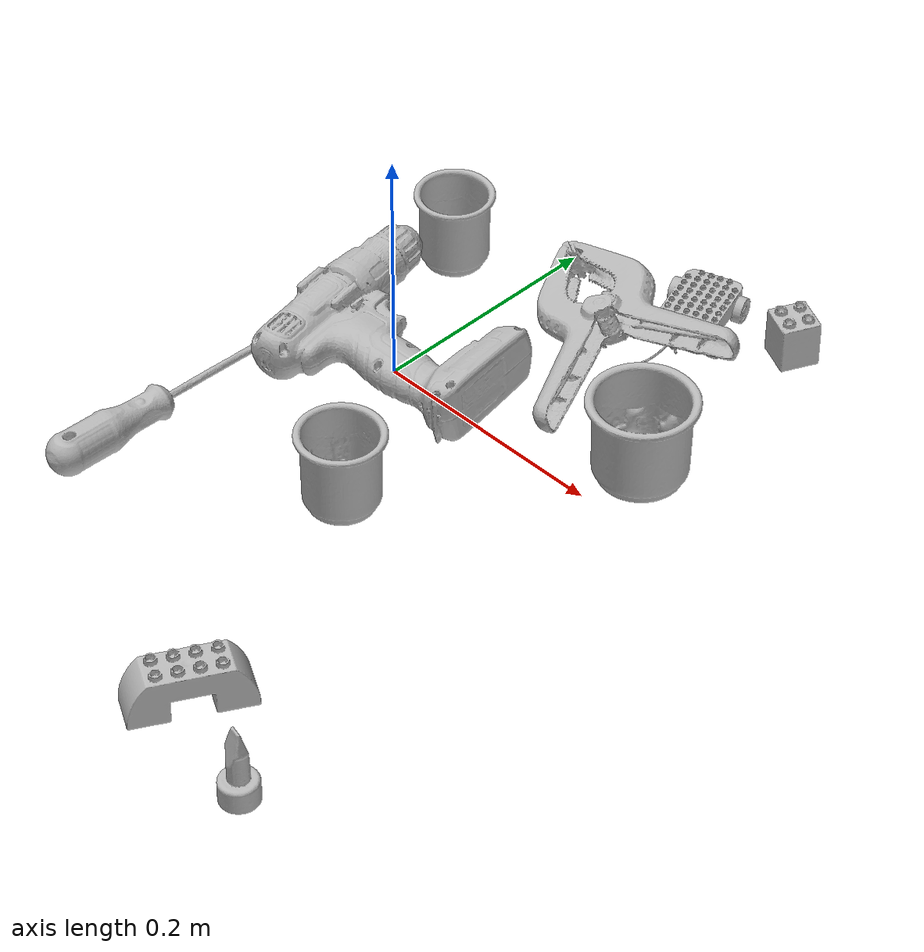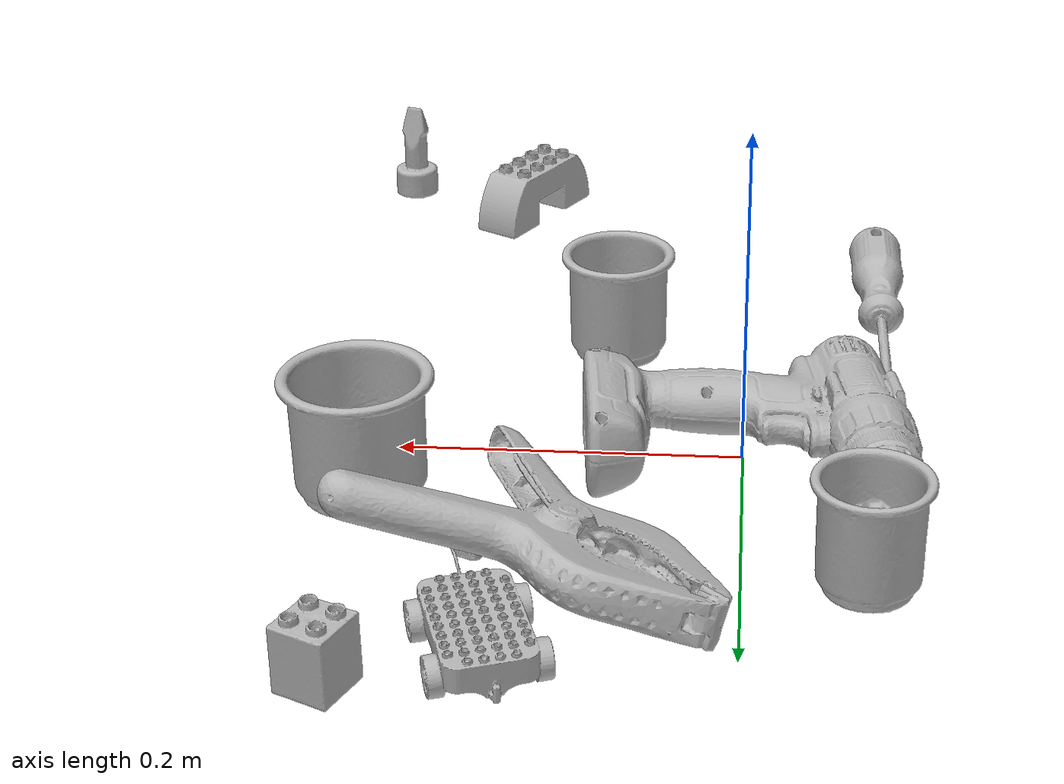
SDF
<sdf version="1.4">
  <world name="default">
    <light name="light1" type="point">
      <pose>0 0 1 0 0 0</pose>
      <diffuse>3 3 3 1</diffuse>
      <specular>3 3 3 1</specular>
    </light>
    <light name="light2" type="point">
      <pose>0 0.5 2 0 0 0</pose>
      <diffuse>1 1 1 1</diffuse>
      <specular>1 1 1 1</specular>
    </light>
    <light name="light3" type="point">
      <pose>0 0.5 2 0 0 0</pose>
      <diffuse>3 3 3 1</diffuse>
      <specular>3 3 3 1</specular>
    </light>
    <scene>
      <ambient>0.7 0.7 0.7</ambient>
    </scene>
    <model name="cup1">
      <link name="link_cup1">
        <collision name="default">
          <geometry>
            <mesh>
              <uri>model://d_cups/collision_meshes/collision.obj</uri>
              <scale>1.0 1.0 1.0</scale>
            </mesh>
          </geometry>
          <surface>
            <friction>
              <ode>
                <mu>0.5</mu>
                <mu2>0.5</mu2>
              </ode>
            </friction>
          <contact>
        <ode>
            <max_vel>0</max_vel>
            <min_depth>0.0001</min_depth>
            <kp>1e8</kp>
        </ode>
    </contact></surface>
        </collision>
        <visual name="default">
          <geometry>
            <mesh>
              <uri>model://d_cups/visual_meshes/visual.dae</uri>
              <scale>1.0 1.0 1.0</scale>
            </mesh>
          </geometry>
        </visual>
        <inertial>
          <mass>0.04943045228719711</mass>
          <pose>0.0008068052702583373 0.0019117395859211683 -0.0022666507866233587 0.2401104468273406 -0.24710716259907536 0.594298245500967</pose>
          <inertia>
            <ixx>4.1384912e-05</ixx>
            <iyy>4.1265153e-05</iyy>
            <izz>3.7460377e-05</izz>
            <ixy>0</ixy>
            <ixz>0</ixz>
            <iyz>0</iyz>
          </inertia>
        </inertial>
      </link>
      <pose>0.08026131242513657 -0.13097861409187317 0.03465903177857399 1.2792775015730879e-06 2.6580547877349596e-07 -2.87716157301704</pose>
    </model>
    <model name="cup2">
      <link name="link_cup2">
        <collision name="default">
          <geometry>
            <mesh>
              <uri>model://c_cups/collision_meshes/collision.obj</uri>
              <scale>1.0 1.0 1.0</scale>
            </mesh>
          </geometry>
          <surface>
            <friction>
              <ode>
                <mu>0.5</mu>
                <mu2>0.5</mu2>
              </ode>
            </friction>
          <contact>
        <ode>
            <max_vel>0</max_vel>
            <min_depth>0.0001</min_depth>
            <kp>1e8</kp>
        </ode>
    </contact></surface>
        </collision>
        <visual name="default">
          <geometry>
            <mesh>
              <uri>model://c_cups/visual_meshes/visual.dae</uri>
              <scale>1.0 1.0 1.0</scale>
            </mesh>
          </geometry>
        </visual>
        <inertial>
          <mass>0.02161477506160736</mass>
          <pose>0.0007237254758365452 0.002015391131862998 -0.0012750980677083135 0.3021577101392444 0.013461522825774588 -0.08771822086046323</pose>
          <inertia>
            <ixx>1.607462e-05</ixx>
            <iyy>1.5790554e-05</iyy>
            <izz>1.4215883e-05</izz>
            <ixy>0</ixy>
            <ixz>0</ixz>
            <iyz>0</iyz>
          </inertia>
        </inertial>
      </link>
      <pose>-0.06628797948360443 0.13074271380901337 0.03345901891589165 -5.767992472594407e-07 -3.1993111196110847e-07 -2.7823657308403673</pose>
    </model>
    <model name="cup3">
      <link name="link_cup3">
        <collision name="default">
          <geometry>
            <mesh>
              <uri>model://g_cups/collision_meshes/collision.obj</uri>
              <scale>1.0 1.0 1.0</scale>
            </mesh>
          </geometry>
          <surface>
            <friction>
              <ode>
                <mu>0.5</mu>
                <mu2>0.5</mu2>
              </ode>
            </friction>
          <contact>
        <ode>
            <max_vel>0</max_vel>
            <min_depth>0.0001</min_depth>
            <kp>1e8</kp>
        </ode>
    </contact></surface>
        </collision>
        <visual name="default">
          <geometry>
            <mesh>
              <uri>model://g_cups/visual_meshes/visual.dae</uri>
              <scale>1.0 1.0 1.0</scale>
            </mesh>
          </geometry>
        </visual>
        <inertial>
          <mass>0.04413851350545883</mass>
          <pose>-0.0007946275873109698 -4.206433004583232e-05 -0.002132937777787447 -0.2138199678327952 -0.31410615416341514 0.3111935262320568</pose>
          <inertia>
            <ixx>5.151955e-05</ixx>
            <iyy>5.1344283e-05</iyy>
            <izz>5.3365377e-05</izz>
            <ixy>0</ixy>
            <ixz>0</ixz>
            <iyz>0</iyz>
          </inertia>
        </inertial>
      </link>
      <pose>0.21324095129966736 0.049424804747104645 0.0372031107544899 -2.6612577257948275e-05 3.469949977055501e-05 -0.5415540893254596</pose>
    </model>
    <model name="toy1">
      <link name="link_toy1">
        <collision name="default">
          <geometry>
            <mesh>
              <uri>model://e_lego_duplo/collision_meshes/collision.obj</uri>
              <scale>1.0 1.0 1.0</scale>
            </mesh>
          </geometry>
          <surface>
            <friction>
              <ode>
                <mu>0.5</mu>
                <mu2>0.5</mu2>
              </ode>
            </friction>
          <contact>
        <ode>
            <max_vel>0</max_vel>
            <min_depth>0.0001</min_depth>
            <kp>1e8</kp>
        </ode>
    </contact></surface>
        </collision>
        <visual name="default">
          <geometry>
            <mesh>
              <uri>model://e_lego_duplo/visual_meshes/visual.dae</uri>
              <scale>1.0 1.0 1.0</scale>
            </mesh>
          </geometry>
        </visual>
        <inertial>
          <mass>0.08806774020195007</mass>
          <pose>0.0003256051568314433 0.00023485405836254358 0.0019521453650668263 -0.02256777049150226 -6.824370740412915e-05 -0.00762515400873393</pose>
          <inertia>
            <ixx>1.8365032e-05</ixx>
            <iyy>7.537481e-05</iyy>
            <izz>7.3399904e-05</izz>
            <ixy>0</ixy>
            <ixz>0</ixz>
            <iyz>0</iyz>
          </inertia>
        </inertial>
      </link>
      <pose>0.1559523195028305 -0.3481127917766571 0.021808966994285583 1.6836560717663876e-06 -9.06366041864082e-07 1.0659288016773925</pose>
    </model>
    <model name="toy2">
      <link name="link_toy2">
        <collision name="default">
          <geometry>
            <mesh>
              <uri>model://b_lego_duplo/collision_meshes/collision.obj</uri>
              <scale>1.0 1.0 1.0</scale>
            </mesh>
          </geometry>
          <surface>
            <friction>
              <ode>
                <mu>0.5</mu>
                <mu2>0.5</mu2>
              </ode>
            </friction>
          <contact>
        <ode>
            <max_vel>0</max_vel>
            <min_depth>0.0001</min_depth>
            <kp>1e8</kp>
        </ode>
    </contact></surface>
        </collision>
        <visual name="default">
          <geometry>
            <mesh>
              <uri>model://b_lego_duplo/visual_meshes/visual.dae</uri>
              <scale>1.0 1.0 1.0</scale>
            </mesh>
          </geometry>
        </visual>
        <inertial>
          <mass>0.04734363779425621</mass>
          <pose>-0.00011053025809815153 -9.15254986466607e-06 0.0019294298253953457 -0.03749543151759021 -0.02635344242756168 0.4519151706388912</pose>
          <inertia>
            <ixx>9.689229e-06</ixx>
            <iyy>9.754364e-06</iyy>
            <izz>8.632791e-06</izz>
            <ixy>0</ixy>
            <ixz>0</ixz>
            <iyz>0</iyz>
          </inertia>
        </inertial>
      </link>
      <pose>0.20250403881072998 0.23245155811309814 0.021815011277794838 3.149399881588681e-07 -7.960184279127713e-08 -0.432240368144395</pose>
    </model>
    <model name="toy3">
      <link name="link_toy3">
        <collision name="default">
          <geometry>
            <mesh>
              <uri>model://g_lego_duplo/collision_meshes/collision.obj</uri>
              <scale>0.5 0.5 0.5</scale>
            </mesh>
          </geometry>
          <surface>
            <friction>
              <ode>
                <mu>0.5</mu>
                <mu2>0.5</mu2>
              </ode>
            </friction>
          <contact>
        <ode>
            <max_vel>0</max_vel>
            <min_depth>0.0001</min_depth>
            <kp>1e8</kp>
        </ode>
    </contact></surface>
        </collision>
        <visual name="default">
          <geometry>
            <mesh>
              <uri>model://g_lego_duplo/visual_meshes/visual.dae</uri>
              <scale>0.5 0.5 0.5</scale>
            </mesh>
          </geometry>
        </visual>
        <inertial>
          <mass>0.0549229197204113</mass>
          <pose>-0.02502383477985859 0.0008777315961197019 0.0019403378246352077 0.010963030367844774 0.03810824354215502 -0.09653013034360637</pose>
          <inertia>
            <ixx>1.989599e-05</ixx>
            <iyy>6.0152015e-05</iyy>
            <izz>7.525238e-05</izz>
            <ixy>0</ixy>
            <ixz>0</ixz>
            <iyz>0</iyz>
          </inertia>
        </inertial>
      </link>
      <pose>0.13549992442131042 0.1753716915845871 0.014998338185250759 -0.0005621908134768578 -0.003533966273365691 -1.2480324938529255</pose>
    </model>
    <model name="toy4">
      <link name="link_toy4">
        <collision name="default">
          <geometry>
            <mesh>
              <uri>model://e_toy_airplane/collision_meshes/collision.obj</uri>
              <scale>1.0 1.0 1.0</scale>
            </mesh>
          </geometry>
          <surface>
            <friction>
              <ode>
                <mu>0.5</mu>
                <mu2>0.5</mu2>
              </ode>
            </friction>
          <contact>
        <ode>
            <max_vel>0</max_vel>
            <min_depth>0.0001</min_depth>
            <kp>1e8</kp>
        </ode>
    </contact></surface>
        </collision>
        <visual name="default">
          <geometry>
            <mesh>
              <uri>model://e_toy_airplane/visual_meshes/visual.dae</uri>
              <scale>1.0 1.0 1.0</scale>
            </mesh>
          </geometry>
        </visual>
        <inertial>
          <mass>0.02949252724647522</mass>
          <pose>0.0001174047210952267 -2.248294731543865e-05 -0.011187205091118813 0.00551852159670192 0.009228270522190251 0.15041692690710914</pose>
          <inertia>
            <ixx>9.0014555e-06</ixx>
            <iyy>8.909378e-06</iyy>
            <izz>2.7052915e-06</izz>
            <ixy>0</ixy>
            <ixz>0</ixz>
            <iyz>0</iyz>
          </inertia>
        </inertial>
      </link>
      <pose>0.2476658672094345 -0.3839813768863678 0.03321196883916855 4.953812174006467e-05 -0.00013005243864862694 -1.938374181628524</pose>
    </model>
    <model name="hardware1">
      <link name="link_hardware1">
        <collision name="default">
          <geometry>
            <mesh>
              <uri>model://power_drill/collision_meshes/collision.obj</uri>
              <scale>1.0 1.0 1.0</scale>
            </mesh>
          </geometry>
          <surface>
            <friction>
              <ode>
                <mu>0.5</mu>
                <mu2>0.5</mu2>
              </ode>
            </friction>
          <contact>
        <ode>
            <max_vel>0</max_vel>
            <min_depth>0.0001</min_depth>
            <kp>1e8</kp>
        </ode>
    </contact></surface>
        </collision>
        <visual name="default">
          <geometry>
            <mesh>
              <uri>model://power_drill/visual_meshes/visual.dae</uri>
              <scale>1.0 1.0 1.0</scale>
            </mesh>
          </geometry>
        </visual>
        <inertial>
          <mass>0.4622694253921509</mass>
          <pose>-0.014780544675886631 0.014369423501193523 0.0012414170196279883 0.0046091653592492164 0.00407302392026691 -0.1836269379856391</pose>
          <inertia>
            <ixx>0.0018837696</ixx>
            <iyy>0.00074116525</iyy>
            <izz>0.0024878501</izz>
            <ixy>0</ixy>
            <ixz>0</ixz>
            <iyz>0</iyz>
          </inertia>
        </inertial>
      </link>
      <pose>-0.0034988243132829666 0.01875028759241104 0.027312450110912323 -0.030306017626824774 -0.04725287356331235 1.7032078649321174</pose>
    </model>
    <model name="hardware2">
      <link name="link_hardware2">
        <collision name="default">
          <geometry>
            <mesh>
              <uri>model://flat_screwdriver/collision_meshes/collision.obj</uri>
              <scale>1.0 1.0 1.0</scale>
            </mesh>
          </geometry>
          <surface>
            <friction>
              <ode>
                <mu>0.5</mu>
                <mu2>0.5</mu2>
              </ode>
            </friction>
          <contact>
        <ode>
            <max_vel>0</max_vel>
            <min_depth>0.0001</min_depth>
            <kp>1e8</kp>
        </ode>
    </contact></surface>
        </collision>
        <visual name="default">
          <geometry>
            <mesh>
              <uri>model://flat_screwdriver/visual_meshes/visual.dae</uri>
              <scale>1.0 1.0 1.0</scale>
            </mesh>
          </geometry>
        </visual>
        <inertial>
          <mass>0.07028686255216599</mass>
          <pose>-0.0489187091588974 -0.0006576801533810794 -0.0006140916375443339 -0.5613212056153659 -0.0032337294395619258 0.006982277044942129</pose>
          <inertia>
            <ixx>8.3043415e-06</ixx>
            <iyy>0.00010542549</iyy>
            <izz>0.00010537667</izz>
            <ixy>0</ixy>
            <ixz>0</ixz>
            <iyz>0</iyz>
          </inertia>
        </inertial>
      </link>
      <pose>-0.08720064908266068 -0.16385836899280548 0.01533864252269268 -0.21440964274636234 0.0406949283188436 1.563673365354619</pose>
    </model>
    <model name="hardware3">
      <link name="link_hardware3">
        <collision name="default">
          <geometry>
            <mesh>
              <uri>model://extra_large_clamp/collision_meshes/collision.obj</uri>
              <scale>1.0 1.0 1.0</scale>
            </mesh>
          </geometry>
          <surface>
            <friction>
              <ode>
                <mu>0.5</mu>
                <mu2>0.5</mu2>
              </ode>
            </friction>
          <contact>
        <ode>
            <max_vel>0</max_vel>
            <min_depth>0.0001</min_depth>
            <kp>1e8</kp>
        </ode>
    </contact></surface>
        </collision>
        <visual name="default">
          <geometry>
            <mesh>
              <uri>model://extra_large_clamp/visual_meshes/visual.dae</uri>
              <scale>1.0 1.0 1.0</scale>
            </mesh>
          </geometry>
        </visual>
        <inertial>
          <mass>0.19051048159599304</mass>
          <pose>0.0032320222817361355 -7.615413051098585e-05 0.0003172157157678157 0.013786989477745152 -0.0005066809054022428 -0.0008935736893705532</pose>
          <inertia>
            <ixx>0.00028954487</ixx>
            <iyy>0.0004985067</iyy>
            <izz>0.0007616155</izz>
            <ixy>0</ixy>
            <ixz>0</ixz>
            <iyz>0</iyz>
          </inertia>
        </inertial>
      </link>
      <pose>0.09300056844949722 0.13683047890663147 0.026985302567481995 -0.2886319923131407 0.13114117245559814 2.5880755384524248</pose>
    </model>
  <physics type="ode">
      <max_contacts>50</max_contacts>
      <ode>
        <solver>
          <type>quick</type>
          <iters>75</iters>
        </solver>
        <constraints>
          <contact_max_correcting_vel>0</contact_max_correcting_vel>
          <contact_surface_layer>0</contact_surface_layer>
        </constraints>
      </ode>
    </physics></world>
</sdf>
